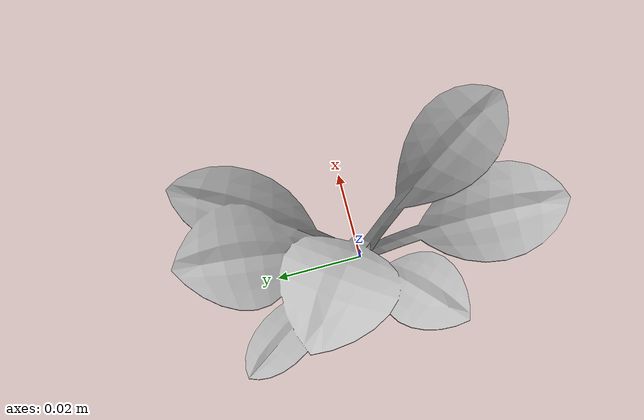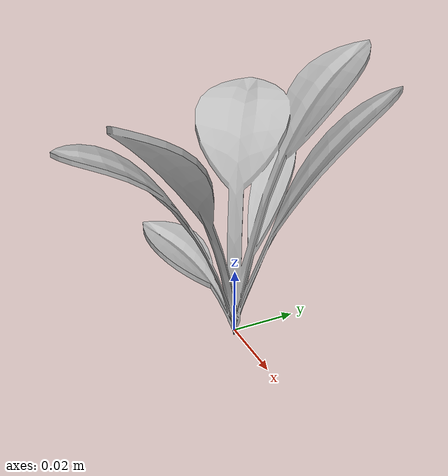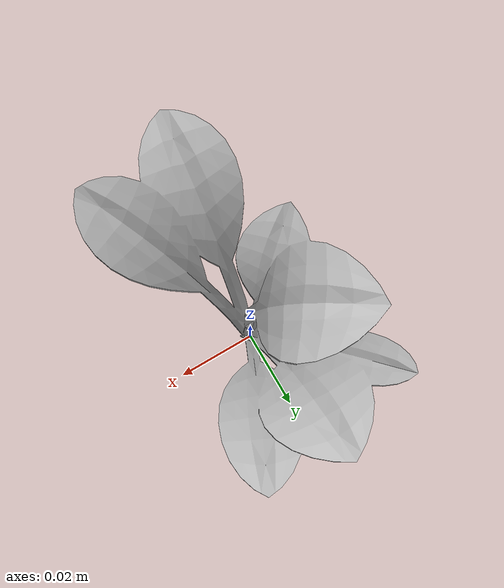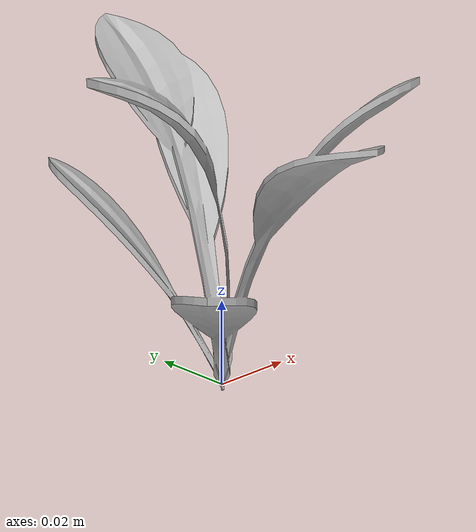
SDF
<sdf version="1.6">
  <model name="sugar_beet_52">
    <static>true</static>
    <link name="body">
      <visual name="visual">
        <geometry>
          <mesh>
            <uri>file:///sugar_beet_52/media/sugar_beet.dae</uri>
          </mesh>
        </geometry>
      </visual>
    </link>
  </model>
</sdf>
